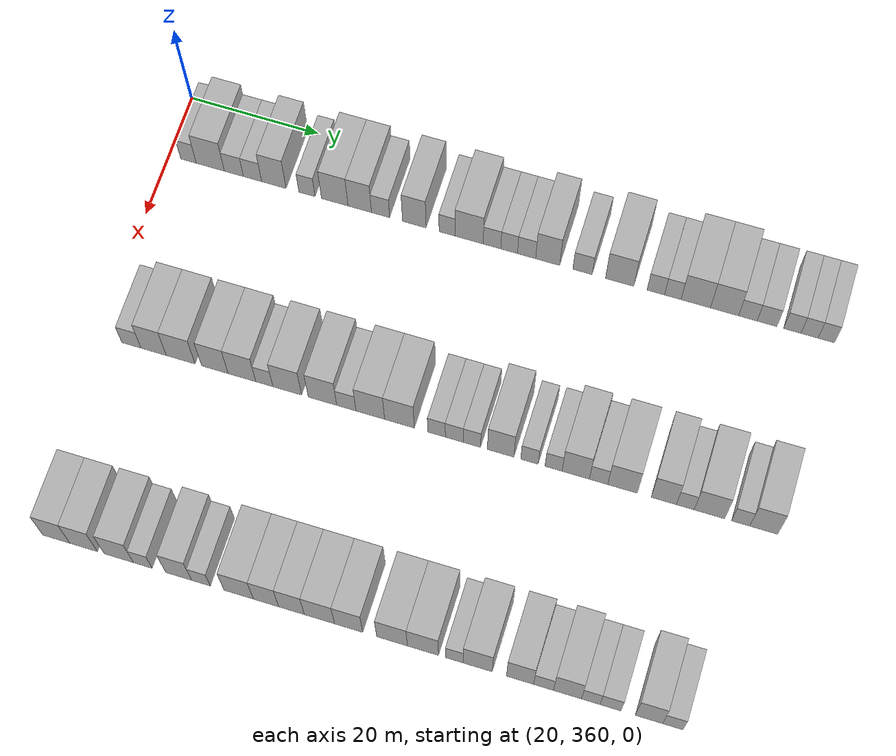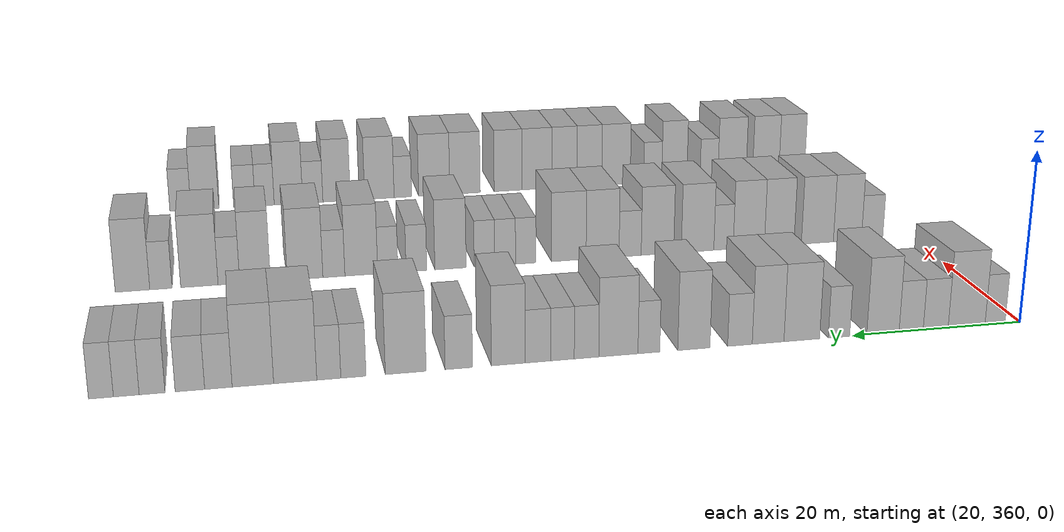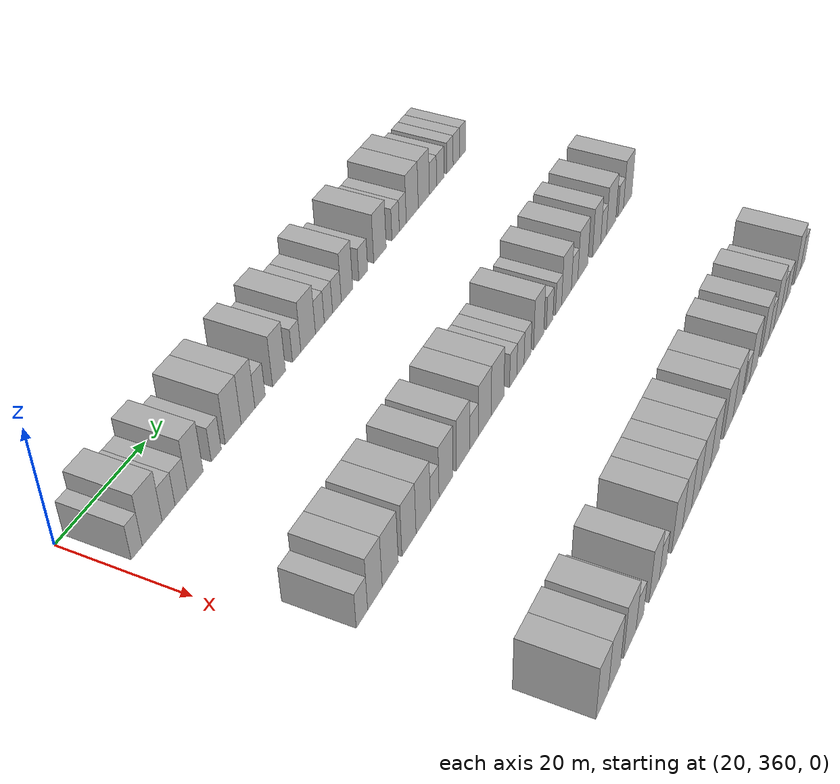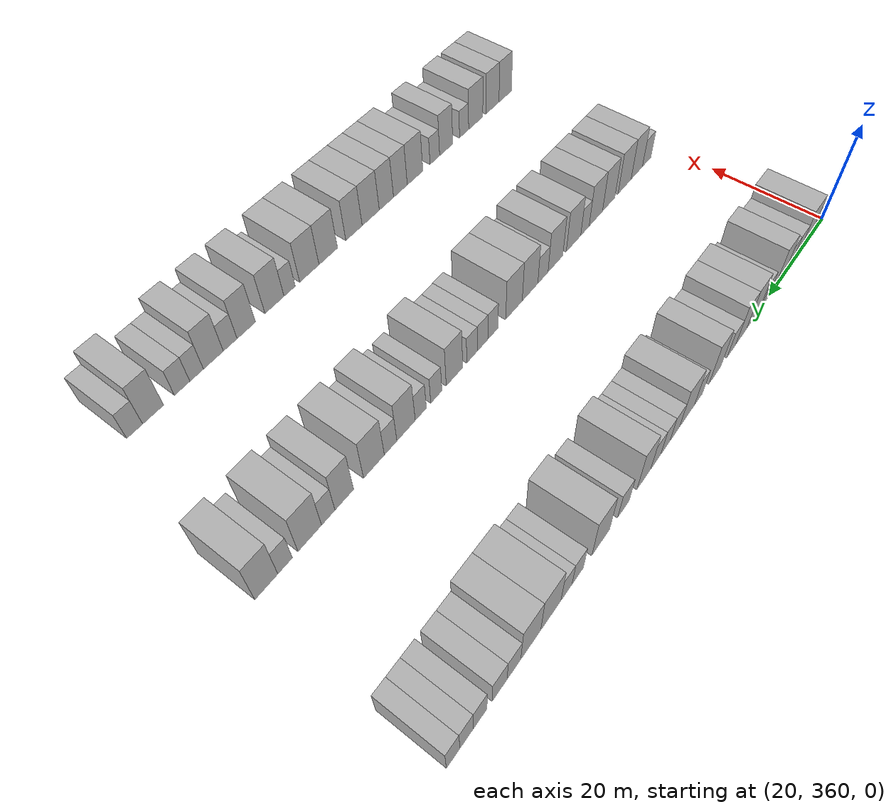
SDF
<sdf version="1.6">
 <world name="default">
  <model name="building_196">
   <static>1</static>
   <pose>25.0000 363.0761 0 0.000000 0.000000 0.000000</pose>
   <link name="link">
    <pose>0 0 3.00 0 0 0</pose>
    <collision name="collision"><geometry><box><size>10.0000 2.4360 6.0000</size></box></geometry></collision>
    <visual name="visual">
     <cast_shadows>0</cast_shadows>
     <geometry><box><size>10.0000 2.4360 6.0000</size></box></geometry>
     <material>
      <script>
       <uri>model://HANNAS_wall/materials/scripts</uri>
       <uri>model://HANNAS_wall/materials/textures</uri>
       <name>vrc/HANNAS_wall</name>
      </script>
     </material>
    </visual>
   </link>
  </model>
  <model name="building_197">
   <static>1</static>
   <pose>25.0000 366.5120 0 0.000000 0.000000 0.000000</pose>
   <link name="link">
    <pose>0 0 4.50 0 0 0</pose>
    <collision name="collision"><geometry><box><size>10.0000 4.4358 9.0000</size></box></geometry></collision>
    <visual name="visual">
     <cast_shadows>0</cast_shadows>
     <geometry><box><size>10.0000 4.4358 9.0000</size></box></geometry>
     <material>
      <script>
       <uri>model://HANNAS_wall/materials/scripts</uri>
       <uri>model://HANNAS_wall/materials/textures</uri>
       <name>vrc/HANNAS_wall</name>
      </script>
     </material>
    </visual>
   </link>
  </model>
  <model name="building_198">
   <static>1</static>
   <pose>25.0000 370.2203 0 0.000000 0.000000 0.000000</pose>
   <link name="link">
    <pose>0 0 3.00 0 0 0</pose>
    <collision name="collision"><geometry><box><size>10.0000 2.9808 6.0000</size></box></geometry></collision>
    <visual name="visual">
     <cast_shadows>0</cast_shadows>
     <geometry><box><size>10.0000 2.9808 6.0000</size></box></geometry>
     <material>
      <script>
       <uri>model://HANNAS_wall/materials/scripts</uri>
       <uri>model://HANNAS_wall/materials/textures</uri>
       <name>vrc/HANNAS_wall</name>
      </script>
     </material>
    </visual>
   </link>
  </model>
  <model name="building_199">
   <static>1</static>
   <pose>25.0000 373.1420 0 0.000000 0.000000 0.000000</pose>
   <link name="link">
    <pose>0 0 3.00 0 0 0</pose>
    <collision name="collision"><geometry><box><size>10.0000 2.8626 6.0000</size></box></geometry></collision>
    <visual name="visual">
     <cast_shadows>0</cast_shadows>
     <geometry><box><size>10.0000 2.8626 6.0000</size></box></geometry>
     <material>
      <script>
       <uri>model://HANNAS_wall/materials/scripts</uri>
       <uri>model://HANNAS_wall/materials/textures</uri>
       <name>vrc/HANNAS_wall</name>
      </script>
     </material>
    </visual>
   </link>
  </model>
  <model name="building_200">
   <static>1</static>
   <pose>25.0000 376.4767 0 0.000000 0.000000 0.000000</pose>
   <link name="link">
    <pose>0 0 4.50 0 0 0</pose>
    <collision name="collision"><geometry><box><size>10.0000 3.8067 9.0000</size></box></geometry></collision>
    <visual name="visual">
     <cast_shadows>0</cast_shadows>
     <geometry><box><size>10.0000 3.8067 9.0000</size></box></geometry>
     <material>
      <script>
       <uri>model://HANNAS_wall/materials/scripts</uri>
       <uri>model://HANNAS_wall/materials/textures</uri>
       <name>vrc/HANNAS_wall</name>
      </script>
     </material>
    </visual>
   </link>
  </model>
  <model name="building_201">
   <static>1</static>
   <pose>25.0000 381.6316 0 0.000000 0.000000 0.000000</pose>
   <link name="link">
    <pose>0 0 3.00 0 0 0</pose>
    <collision name="collision"><geometry><box><size>10.0000 2.5030 6.0000</size></box></geometry></collision>
    <visual name="visual">
     <cast_shadows>0</cast_shadows>
     <geometry><box><size>10.0000 2.5030 6.0000</size></box></geometry>
     <material>
      <script>
       <uri>model://HANNAS_wall/materials/scripts</uri>
       <uri>model://HANNAS_wall/materials/textures</uri>
       <name>vrc/HANNAS_wall</name>
      </script>
     </material>
    </visual>
   </link>
  </model>
  <model name="building_202">
   <static>1</static>
   <pose>25.0000 385.9404 0 0.000000 0.000000 0.000000</pose>
   <link name="link">
    <pose>0 0 4.50 0 0 0</pose>
    <collision name="collision"><geometry><box><size>10.0000 4.1147 9.0000</size></box></geometry></collision>
    <visual name="visual">
     <cast_shadows>0</cast_shadows>
     <geometry><box><size>10.0000 4.1147 9.0000</size></box></geometry>
     <material>
      <script>
       <uri>model://HANNAS_wall/materials/scripts</uri>
       <uri>model://HANNAS_wall/materials/textures</uri>
       <name>vrc/HANNAS_wall</name>
      </script>
     </material>
    </visual>
   </link>
  </model>
  <model name="building_203">
   <static>1</static>
   <pose>25.0000 389.8136 0 0.000000 0.000000 0.000000</pose>
   <link name="link">
    <pose>0 0 4.50 0 0 0</pose>
    <collision name="collision"><geometry><box><size>10.0000 3.6316 9.0000</size></box></geometry></collision>
    <visual name="visual">
     <cast_shadows>0</cast_shadows>
     <geometry><box><size>10.0000 3.6316 9.0000</size></box></geometry>
     <material>
      <script>
       <uri>model://HANNAS_wall/materials/scripts</uri>
       <uri>model://HANNAS_wall/materials/textures</uri>
       <name>vrc/HANNAS_wall</name>
      </script>
     </material>
    </visual>
   </link>
  </model>
  <model name="building_204">
   <static>1</static>
   <pose>25.0000 393.0250 0 0.000000 0.000000 0.000000</pose>
   <link name="link">
    <pose>0 0 3.00 0 0 0</pose>
    <collision name="collision"><geometry><box><size>10.0000 2.7913 6.0000</size></box></geometry></collision>
    <visual name="visual">
     <cast_shadows>0</cast_shadows>
     <geometry><box><size>10.0000 2.7913 6.0000</size></box></geometry>
     <material>
      <script>
       <uri>model://HANNAS_wall/materials/scripts</uri>
       <uri>model://HANNAS_wall/materials/textures</uri>
       <name>vrc/HANNAS_wall</name>
      </script>
     </material>
    </visual>
   </link>
  </model>
  <model name="building_205">
   <static>1</static>
   <pose>25.0000 398.2296 0 0.000000 0.000000 0.000000</pose>
   <link name="link">
    <pose>0 0 4.50 0 0 0</pose>
    <collision name="collision"><geometry><box><size>10.0000 3.6178 9.0000</size></box></geometry></collision>
    <visual name="visual">
     <cast_shadows>0</cast_shadows>
     <geometry><box><size>10.0000 3.6178 9.0000</size></box></geometry>
     <material>
      <script>
       <uri>model://HANNAS_wall/materials/scripts</uri>
       <uri>model://HANNAS_wall/materials/textures</uri>
       <name>vrc/HANNAS_wall</name>
      </script>
     </material>
    </visual>
   </link>
  </model>
  <model name="building_206">
   <static>1</static>
   <pose>25.0000 403.2517 0 0.000000 0.000000 0.000000</pose>
   <link name="link">
    <pose>0 0 3.00 0 0 0</pose>
    <collision name="collision"><geometry><box><size>10.0000 2.4264 6.0000</size></box></geometry></collision>
    <visual name="visual">
     <cast_shadows>0</cast_shadows>
     <geometry><box><size>10.0000 2.4264 6.0000</size></box></geometry>
     <material>
      <script>
       <uri>model://HANNAS_wall/materials/scripts</uri>
       <uri>model://HANNAS_wall/materials/textures</uri>
       <name>vrc/HANNAS_wall</name>
      </script>
     </material>
    </visual>
   </link>
  </model>
  <model name="building_207">
   <static>1</static>
   <pose>25.0000 406.6248 0 0.000000 0.000000 0.000000</pose>
   <link name="link">
    <pose>0 0 4.50 0 0 0</pose>
    <collision name="collision"><geometry><box><size>10.0000 4.3197 9.0000</size></box></geometry></collision>
    <visual name="visual">
     <cast_shadows>0</cast_shadows>
     <geometry><box><size>10.0000 4.3197 9.0000</size></box></geometry>
     <material>
      <script>
       <uri>model://HANNAS_wall/materials/scripts</uri>
       <uri>model://HANNAS_wall/materials/textures</uri>
       <name>vrc/HANNAS_wall</name>
      </script>
     </material>
    </visual>
   </link>
  </model>
  <model name="building_208">
   <static>1</static>
   <pose>25.0000 410.1252 0 0.000000 0.000000 0.000000</pose>
   <link name="link">
    <pose>0 0 3.00 0 0 0</pose>
    <collision name="collision"><geometry><box><size>10.0000 2.6813 6.0000</size></box></geometry></collision>
    <visual name="visual">
     <cast_shadows>0</cast_shadows>
     <geometry><box><size>10.0000 2.6813 6.0000</size></box></geometry>
     <material>
      <script>
       <uri>model://HANNAS_wall/materials/scripts</uri>
       <uri>model://HANNAS_wall/materials/textures</uri>
       <name>vrc/HANNAS_wall</name>
      </script>
     </material>
    </visual>
   </link>
  </model>
  <model name="building_209">
   <static>1</static>
   <pose>25.0000 412.7390 0 0.000000 0.000000 0.000000</pose>
   <link name="link">
    <pose>0 0 3.00 0 0 0</pose>
    <collision name="collision"><geometry><box><size>10.0000 2.5463 6.0000</size></box></geometry></collision>
    <visual name="visual">
     <cast_shadows>0</cast_shadows>
     <geometry><box><size>10.0000 2.5463 6.0000</size></box></geometry>
     <material>
      <script>
       <uri>model://HANNAS_wall/materials/scripts</uri>
       <uri>model://HANNAS_wall/materials/textures</uri>
       <name>vrc/HANNAS_wall</name>
      </script>
     </material>
    </visual>
   </link>
  </model>
  <model name="building_210">
   <static>1</static>
   <pose>25.0000 415.3882 0 0.000000 0.000000 0.000000</pose>
   <link name="link">
    <pose>0 0 3.00 0 0 0</pose>
    <collision name="collision"><geometry><box><size>10.0000 2.7522 6.0000</size></box></geometry></collision>
    <visual name="visual">
     <cast_shadows>0</cast_shadows>
     <geometry><box><size>10.0000 2.7522 6.0000</size></box></geometry>
     <material>
      <script>
       <uri>model://HANNAS_wall/materials/scripts</uri>
       <uri>model://HANNAS_wall/materials/textures</uri>
       <name>vrc/HANNAS_wall</name>
      </script>
     </material>
    </visual>
   </link>
  </model>
  <model name="building_211">
   <static>1</static>
   <pose>25.0000 418.5839 0 0.000000 0.000000 0.000000</pose>
   <link name="link">
    <pose>0 0 4.50 0 0 0</pose>
    <collision name="collision"><geometry><box><size>10.0000 3.6391 9.0000</size></box></geometry></collision>
    <visual name="visual">
     <cast_shadows>0</cast_shadows>
     <geometry><box><size>10.0000 3.6391 9.0000</size></box></geometry>
     <material>
      <script>
       <uri>model://HANNAS_wall/materials/scripts</uri>
       <uri>model://HANNAS_wall/materials/textures</uri>
       <name>vrc/HANNAS_wall</name>
      </script>
     </material>
    </visual>
   </link>
  </model>
  <model name="building_212">
   <static>1</static>
   <pose>25.0000 423.8590 0 0.000000 0.000000 0.000000</pose>
   <link name="link">
    <pose>0 0 3.00 0 0 0</pose>
    <collision name="collision"><geometry><box><size>10.0000 2.9113 6.0000</size></box></geometry></collision>
    <visual name="visual">
     <cast_shadows>0</cast_shadows>
     <geometry><box><size>10.0000 2.9113 6.0000</size></box></geometry>
     <material>
      <script>
       <uri>model://HANNAS_wall/materials/scripts</uri>
       <uri>model://HANNAS_wall/materials/textures</uri>
       <name>vrc/HANNAS_wall</name>
      </script>
     </material>
    </visual>
   </link>
  </model>
  <model name="building_213">
   <static>1</static>
   <pose>25.0000 429.4489 0 0.000000 0.000000 0.000000</pose>
   <link name="link">
    <pose>0 0 4.50 0 0 0</pose>
    <collision name="collision"><geometry><box><size>10.0000 4.2684 9.0000</size></box></geometry></collision>
    <visual name="visual">
     <cast_shadows>0</cast_shadows>
     <geometry><box><size>10.0000 4.2684 9.0000</size></box></geometry>
     <material>
      <script>
       <uri>model://HANNAS_wall/materials/scripts</uri>
       <uri>model://HANNAS_wall/materials/textures</uri>
       <name>vrc/HANNAS_wall</name>
      </script>
     </material>
    </visual>
   </link>
  </model>
  <model name="building_214">
   <static>1</static>
   <pose>25.0000 434.8872 0 0.000000 0.000000 0.000000</pose>
   <link name="link">
    <pose>0 0 3.00 0 0 0</pose>
    <collision name="collision"><geometry><box><size>10.0000 2.6083 6.0000</size></box></geometry></collision>
    <visual name="visual">
     <cast_shadows>0</cast_shadows>
     <geometry><box><size>10.0000 2.6083 6.0000</size></box></geometry>
     <material>
      <script>
       <uri>model://HANNAS_wall/materials/scripts</uri>
       <uri>model://HANNAS_wall/materials/textures</uri>
       <name>vrc/HANNAS_wall</name>
      </script>
     </material>
    </visual>
   </link>
  </model>
  <model name="building_215">
   <static>1</static>
   <pose>25.0000 437.4243 0 0.000000 0.000000 0.000000</pose>
   <link name="link">
    <pose>0 0 3.00 0 0 0</pose>
    <collision name="collision"><geometry><box><size>10.0000 2.4657 6.0000</size></box></geometry></collision>
    <visual name="visual">
     <cast_shadows>0</cast_shadows>
     <geometry><box><size>10.0000 2.4657 6.0000</size></box></geometry>
     <material>
      <script>
       <uri>model://HANNAS_wall/materials/scripts</uri>
       <uri>model://HANNAS_wall/materials/textures</uri>
       <name>vrc/HANNAS_wall</name>
      </script>
     </material>
    </visual>
   </link>
  </model>
  <model name="building_216">
   <static>1</static>
   <pose>25.0000 440.8545 0 0.000000 0.000000 0.000000</pose>
   <link name="link">
    <pose>0 0 4.50 0 0 0</pose>
    <collision name="collision"><geometry><box><size>10.0000 4.3948 9.0000</size></box></geometry></collision>
    <visual name="visual">
     <cast_shadows>0</cast_shadows>
     <geometry><box><size>10.0000 4.3948 9.0000</size></box></geometry>
     <material>
      <script>
       <uri>model://HANNAS_wall/materials/scripts</uri>
       <uri>model://HANNAS_wall/materials/textures</uri>
       <name>vrc/HANNAS_wall</name>
      </script>
     </material>
    </visual>
   </link>
  </model>
  <model name="building_217">
   <static>1</static>
   <pose>25.0000 445.1422 0 0.000000 0.000000 0.000000</pose>
   <link name="link">
    <pose>0 0 4.50 0 0 0</pose>
    <collision name="collision"><geometry><box><size>10.0000 4.1806 9.0000</size></box></geometry></collision>
    <visual name="visual">
     <cast_shadows>0</cast_shadows>
     <geometry><box><size>10.0000 4.1806 9.0000</size></box></geometry>
     <material>
      <script>
       <uri>model://HANNAS_wall/materials/scripts</uri>
       <uri>model://HANNAS_wall/materials/textures</uri>
       <name>vrc/HANNAS_wall</name>
      </script>
     </material>
    </visual>
   </link>
  </model>
  <model name="building_218">
   <static>1</static>
   <pose>25.0000 448.6079 0 0.000000 0.000000 0.000000</pose>
   <link name="link">
    <pose>0 0 3.00 0 0 0</pose>
    <collision name="collision"><geometry><box><size>10.0000 2.7507 6.0000</size></box></geometry></collision>
    <visual name="visual">
     <cast_shadows>0</cast_shadows>
     <geometry><box><size>10.0000 2.7507 6.0000</size></box></geometry>
     <material>
      <script>
       <uri>model://HANNAS_wall/materials/scripts</uri>
       <uri>model://HANNAS_wall/materials/textures</uri>
       <name>vrc/HANNAS_wall</name>
      </script>
     </material>
    </visual>
   </link>
  </model>
  <model name="building_219">
   <static>1</static>
   <pose>25.0000 451.4491 0 0.000000 0.000000 0.000000</pose>
   <link name="link">
    <pose>0 0 3.00 0 0 0</pose>
    <collision name="collision"><geometry><box><size>10.0000 2.9318 6.0000</size></box></geometry></collision>
    <visual name="visual">
     <cast_shadows>0</cast_shadows>
     <geometry><box><size>10.0000 2.9318 6.0000</size></box></geometry>
     <material>
      <script>
       <uri>model://HANNAS_wall/materials/scripts</uri>
       <uri>model://HANNAS_wall/materials/textures</uri>
       <name>vrc/HANNAS_wall</name>
      </script>
     </material>
    </visual>
   </link>
  </model>
  <model name="building_220">
   <static>1</static>
   <pose>25.0000 455.1872 0 0.000000 0.000000 0.000000</pose>
   <link name="link">
    <pose>0 0 3.00 0 0 0</pose>
    <collision name="collision"><geometry><box><size>10.0000 2.5444 6.0000</size></box></geometry></collision>
    <visual name="visual">
     <cast_shadows>0</cast_shadows>
     <geometry><box><size>10.0000 2.5444 6.0000</size></box></geometry>
     <material>
      <script>
       <uri>model://HANNAS_wall/materials/scripts</uri>
       <uri>model://HANNAS_wall/materials/textures</uri>
       <name>vrc/HANNAS_wall</name>
      </script>
     </material>
    </visual>
   </link>
  </model>
  <model name="building_221">
   <static>1</static>
   <pose>25.0000 457.7211 0 0.000000 0.000000 0.000000</pose>
   <link name="link">
    <pose>0 0 3.00 0 0 0</pose>
    <collision name="collision"><geometry><box><size>10.0000 2.5233 6.0000</size></box></geometry></collision>
    <visual name="visual">
     <cast_shadows>0</cast_shadows>
     <geometry><box><size>10.0000 2.5233 6.0000</size></box></geometry>
     <material>
      <script>
       <uri>model://HANNAS_wall/materials/scripts</uri>
       <uri>model://HANNAS_wall/materials/textures</uri>
       <name>vrc/HANNAS_wall</name>
      </script>
     </material>
    </visual>
   </link>
  </model>
  <model name="building_222">
   <static>1</static>
   <pose>25.0000 460.1951 0 0.000000 0.000000 0.000000</pose>
   <link name="link">
    <pose>0 0 3.00 0 0 0</pose>
    <collision name="collision"><geometry><box><size>10.0000 2.4246 6.0000</size></box></geometry></collision>
    <visual name="visual">
     <cast_shadows>0</cast_shadows>
     <geometry><box><size>10.0000 2.4246 6.0000</size></box></geometry>
     <material>
      <script>
       <uri>model://HANNAS_wall/materials/scripts</uri>
       <uri>model://HANNAS_wall/materials/textures</uri>
       <name>vrc/HANNAS_wall</name>
      </script>
     </material>
    </visual>
   </link>
  </model>
  <model name="building_420">
   <static>1</static>
   <pose>55.0000 365.2046 0 0.000000 0.000000 0.000000</pose>
   <link name="link">
    <pose>0 0 3.00 0 0 0</pose>
    <collision name="collision"><geometry><box><size>10.0000 2.9346 6.0000</size></box></geometry></collision>
    <visual name="visual">
     <cast_shadows>0</cast_shadows>
     <geometry><box><size>10.0000 2.9346 6.0000</size></box></geometry>
     <material>
      <script>
       <uri>model://HANNAS_wall/materials/scripts</uri>
       <uri>model://HANNAS_wall/materials/textures</uri>
       <name>vrc/HANNAS_wall</name>
      </script>
     </material>
    </visual>
   </link>
  </model>
  <model name="building_421">
   <static>1</static>
   <pose>55.0000 368.5958 0 0.000000 0.000000 0.000000</pose>
   <link name="link">
    <pose>0 0 4.50 0 0 0</pose>
    <collision name="collision"><geometry><box><size>10.0000 3.8480 9.0000</size></box></geometry></collision>
    <visual name="visual">
     <cast_shadows>0</cast_shadows>
     <geometry><box><size>10.0000 3.8480 9.0000</size></box></geometry>
     <material>
      <script>
       <uri>model://HANNAS_wall/materials/scripts</uri>
       <uri>model://HANNAS_wall/materials/textures</uri>
       <name>vrc/HANNAS_wall</name>
      </script>
     </material>
    </visual>
   </link>
  </model>
  <model name="building_422">
   <static>1</static>
   <pose>55.0000 372.6988 0 0.000000 0.000000 0.000000</pose>
   <link name="link">
    <pose>0 0 4.50 0 0 0</pose>
    <collision name="collision"><geometry><box><size>10.0000 4.3580 9.0000</size></box></geometry></collision>
    <visual name="visual">
     <cast_shadows>0</cast_shadows>
     <geometry><box><size>10.0000 4.3580 9.0000</size></box></geometry>
     <material>
      <script>
       <uri>model://HANNAS_wall/materials/scripts</uri>
       <uri>model://HANNAS_wall/materials/textures</uri>
       <name>vrc/HANNAS_wall</name>
      </script>
     </material>
    </visual>
   </link>
  </model>
  <model name="building_423">
   <static>1</static>
   <pose>55.0000 377.8747 0 0.000000 0.000000 0.000000</pose>
   <link name="link">
    <pose>0 0 4.50 0 0 0</pose>
    <collision name="collision"><geometry><box><size>10.0000 3.9937 9.0000</size></box></geometry></collision>
    <visual name="visual">
     <cast_shadows>0</cast_shadows>
     <geometry><box><size>10.0000 3.9937 9.0000</size></box></geometry>
     <material>
      <script>
       <uri>model://HANNAS_wall/materials/scripts</uri>
       <uri>model://HANNAS_wall/materials/textures</uri>
       <name>vrc/HANNAS_wall</name>
      </script>
     </material>
    </visual>
   </link>
  </model>
  <model name="building_424">
   <static>1</static>
   <pose>55.0000 381.9598 0 0.000000 0.000000 0.000000</pose>
   <link name="link">
    <pose>0 0 4.50 0 0 0</pose>
    <collision name="collision"><geometry><box><size>10.0000 4.1765 9.0000</size></box></geometry></collision>
    <visual name="visual">
     <cast_shadows>0</cast_shadows>
     <geometry><box><size>10.0000 4.1765 9.0000</size></box></geometry>
     <material>
      <script>
       <uri>model://HANNAS_wall/materials/scripts</uri>
       <uri>model://HANNAS_wall/materials/textures</uri>
       <name>vrc/HANNAS_wall</name>
      </script>
     </material>
    </visual>
   </link>
  </model>
  <model name="building_425">
   <static>1</static>
   <pose>55.0000 385.3337 0 0.000000 0.000000 0.000000</pose>
   <link name="link">
    <pose>0 0 3.00 0 0 0</pose>
    <collision name="collision"><geometry><box><size>10.0000 2.5712 6.0000</size></box></geometry></collision>
    <visual name="visual">
     <cast_shadows>0</cast_shadows>
     <geometry><box><size>10.0000 2.5712 6.0000</size></box></geometry>
     <material>
      <script>
       <uri>model://HANNAS_wall/materials/scripts</uri>
       <uri>model://HANNAS_wall/materials/textures</uri>
       <name>vrc/HANNAS_wall</name>
      </script>
     </material>
    </visual>
   </link>
  </model>
  <model name="building_426">
   <static>1</static>
   <pose>55.0000 388.7705 0 0.000000 0.000000 0.000000</pose>
   <link name="link">
    <pose>0 0 4.50 0 0 0</pose>
    <collision name="collision"><geometry><box><size>10.0000 4.3025 9.0000</size></box></geometry></collision>
    <visual name="visual">
     <cast_shadows>0</cast_shadows>
     <geometry><box><size>10.0000 4.3025 9.0000</size></box></geometry>
     <material>
      <script>
       <uri>model://HANNAS_wall/materials/scripts</uri>
       <uri>model://HANNAS_wall/materials/textures</uri>
       <name>vrc/HANNAS_wall</name>
      </script>
     </material>
    </visual>
   </link>
  </model>
  <model name="building_427">
   <static>1</static>
   <pose>55.0000 394.0456 0 0.000000 0.000000 0.000000</pose>
   <link name="link">
    <pose>0 0 4.50 0 0 0</pose>
    <collision name="collision"><geometry><box><size>10.0000 4.2476 9.0000</size></box></geometry></collision>
    <visual name="visual">
     <cast_shadows>0</cast_shadows>
     <geometry><box><size>10.0000 4.2476 9.0000</size></box></geometry>
     <material>
      <script>
       <uri>model://HANNAS_wall/materials/scripts</uri>
       <uri>model://HANNAS_wall/materials/textures</uri>
       <name>vrc/HANNAS_wall</name>
      </script>
     </material>
    </visual>
   </link>
  </model>
  <model name="building_428">
   <static>1</static>
   <pose>55.0000 397.6060 0 0.000000 0.000000 0.000000</pose>
   <link name="link">
    <pose>0 0 3.00 0 0 0</pose>
    <collision name="collision"><geometry><box><size>10.0000 2.8733 6.0000</size></box></geometry></collision>
    <visual name="visual">
     <cast_shadows>0</cast_shadows>
     <geometry><box><size>10.0000 2.8733 6.0000</size></box></geometry>
     <material>
      <script>
       <uri>model://HANNAS_wall/materials/scripts</uri>
       <uri>model://HANNAS_wall/materials/textures</uri>
       <name>vrc/HANNAS_wall</name>
      </script>
     </material>
    </visual>
   </link>
  </model>
  <model name="building_429">
   <static>1</static>
   <pose>55.0000 401.1682 0 0.000000 0.000000 0.000000</pose>
   <link name="link">
    <pose>0 0 4.50 0 0 0</pose>
    <collision name="collision"><geometry><box><size>10.0000 4.2511 9.0000</size></box></geometry></collision>
    <visual name="visual">
     <cast_shadows>0</cast_shadows>
     <geometry><box><size>10.0000 4.2511 9.0000</size></box></geometry>
     <material>
      <script>
       <uri>model://HANNAS_wall/materials/scripts</uri>
       <uri>model://HANNAS_wall/materials/textures</uri>
       <name>vrc/HANNAS_wall</name>
      </script>
     </material>
    </visual>
   </link>
  </model>
  <model name="building_430">
   <static>1</static>
   <pose>55.0000 405.4967 0 0.000000 0.000000 0.000000</pose>
   <link name="link">
    <pose>0 0 4.50 0 0 0</pose>
    <collision name="collision"><geometry><box><size>10.0000 4.4058 9.0000</size></box></geometry></collision>
    <visual name="visual">
     <cast_shadows>0</cast_shadows>
     <geometry><box><size>10.0000 4.4058 9.0000</size></box></geometry>
     <material>
      <script>
       <uri>model://HANNAS_wall/materials/scripts</uri>
       <uri>model://HANNAS_wall/materials/textures</uri>
       <name>vrc/HANNAS_wall</name>
      </script>
     </material>
    </visual>
   </link>
  </model>
  <model name="building_431">
   <static>1</static>
   <pose>55.0000 410.9851 0 0.000000 0.000000 0.000000</pose>
   <link name="link">
    <pose>0 0 3.00 0 0 0</pose>
    <collision name="collision"><geometry><box><size>10.0000 2.5710 6.0000</size></box></geometry></collision>
    <visual name="visual">
     <cast_shadows>0</cast_shadows>
     <geometry><box><size>10.0000 2.5710 6.0000</size></box></geometry>
     <material>
      <script>
       <uri>model://HANNAS_wall/materials/scripts</uri>
       <uri>model://HANNAS_wall/materials/textures</uri>
       <name>vrc/HANNAS_wall</name>
      </script>
     </material>
    </visual>
   </link>
  </model>
  <model name="building_432">
   <static>1</static>
   <pose>55.0000 413.5865 0 0.000000 0.000000 0.000000</pose>
   <link name="link">
    <pose>0 0 3.00 0 0 0</pose>
    <collision name="collision"><geometry><box><size>10.0000 2.6320 6.0000</size></box></geometry></collision>
    <visual name="visual">
     <cast_shadows>0</cast_shadows>
     <geometry><box><size>10.0000 2.6320 6.0000</size></box></geometry>
     <material>
      <script>
       <uri>model://HANNAS_wall/materials/scripts</uri>
       <uri>model://HANNAS_wall/materials/textures</uri>
       <name>vrc/HANNAS_wall</name>
      </script>
     </material>
    </visual>
   </link>
  </model>
  <model name="building_433">
   <static>1</static>
   <pose>55.0000 416.1823 0 0.000000 0.000000 0.000000</pose>
   <link name="link">
    <pose>0 0 3.00 0 0 0</pose>
    <collision name="collision"><geometry><box><size>10.0000 2.5596 6.0000</size></box></geometry></collision>
    <visual name="visual">
     <cast_shadows>0</cast_shadows>
     <geometry><box><size>10.0000 2.5596 6.0000</size></box></geometry>
     <material>
      <script>
       <uri>model://HANNAS_wall/materials/scripts</uri>
       <uri>model://HANNAS_wall/materials/textures</uri>
       <name>vrc/HANNAS_wall</name>
      </script>
     </material>
    </visual>
   </link>
  </model>
  <model name="building_434">
   <static>1</static>
   <pose>55.0000 420.4083 0 0.000000 0.000000 0.000000</pose>
   <link name="link">
    <pose>0 0 4.50 0 0 0</pose>
    <collision name="collision"><geometry><box><size>10.0000 3.8924 9.0000</size></box></geometry></collision>
    <visual name="visual">
     <cast_shadows>0</cast_shadows>
     <geometry><box><size>10.0000 3.8924 9.0000</size></box></geometry>
     <material>
      <script>
       <uri>model://HANNAS_wall/materials/scripts</uri>
       <uri>model://HANNAS_wall/materials/textures</uri>
       <name>vrc/HANNAS_wall</name>
      </script>
     </material>
    </visual>
   </link>
  </model>
  <model name="building_435">
   <static>1</static>
   <pose>55.0000 424.6277 0 0.000000 0.000000 0.000000</pose>
   <link name="link">
    <pose>0 0 3.00 0 0 0</pose>
    <collision name="collision"><geometry><box><size>10.0000 2.5464 6.0000</size></box></geometry></collision>
    <visual name="visual">
     <cast_shadows>0</cast_shadows>
     <geometry><box><size>10.0000 2.5464 6.0000</size></box></geometry>
     <material>
      <script>
       <uri>model://HANNAS_wall/materials/scripts</uri>
       <uri>model://HANNAS_wall/materials/textures</uri>
       <name>vrc/HANNAS_wall</name>
      </script>
     </material>
    </visual>
   </link>
  </model>
  <model name="building_436">
   <static>1</static>
   <pose>55.0000 428.1360 0 0.000000 0.000000 0.000000</pose>
   <link name="link">
    <pose>0 0 3.00 0 0 0</pose>
    <collision name="collision"><geometry><box><size>10.0000 2.4703 6.0000</size></box></geometry></collision>
    <visual name="visual">
     <cast_shadows>0</cast_shadows>
     <geometry><box><size>10.0000 2.4703 6.0000</size></box></geometry>
     <material>
      <script>
       <uri>model://HANNAS_wall/materials/scripts</uri>
       <uri>model://HANNAS_wall/materials/textures</uri>
       <name>vrc/HANNAS_wall</name>
      </script>
     </material>
    </visual>
   </link>
  </model>
  <model name="building_437">
   <static>1</static>
   <pose>55.0000 431.3674 0 0.000000 0.000000 0.000000</pose>
   <link name="link">
    <pose>0 0 4.50 0 0 0</pose>
    <collision name="collision"><geometry><box><size>10.0000 3.9924 9.0000</size></box></geometry></collision>
    <visual name="visual">
     <cast_shadows>0</cast_shadows>
     <geometry><box><size>10.0000 3.9924 9.0000</size></box></geometry>
     <material>
      <script>
       <uri>model://HANNAS_wall/materials/scripts</uri>
       <uri>model://HANNAS_wall/materials/textures</uri>
       <name>vrc/HANNAS_wall</name>
      </script>
     </material>
    </visual>
   </link>
  </model>
  <model name="building_438">
   <static>1</static>
   <pose>55.0000 434.6939 0 0.000000 0.000000 0.000000</pose>
   <link name="link">
    <pose>0 0 3.00 0 0 0</pose>
    <collision name="collision"><geometry><box><size>10.0000 2.6608 6.0000</size></box></geometry></collision>
    <visual name="visual">
     <cast_shadows>0</cast_shadows>
     <geometry><box><size>10.0000 2.6608 6.0000</size></box></geometry>
     <material>
      <script>
       <uri>model://HANNAS_wall/materials/scripts</uri>
       <uri>model://HANNAS_wall/materials/textures</uri>
       <name>vrc/HANNAS_wall</name>
      </script>
     </material>
    </visual>
   </link>
  </model>
  <model name="building_439">
   <static>1</static>
   <pose>55.0000 438.1622 0 0.000000 0.000000 0.000000</pose>
   <link name="link">
    <pose>0 0 4.50 0 0 0</pose>
    <collision name="collision"><geometry><box><size>10.0000 4.2758 9.0000</size></box></geometry></collision>
    <visual name="visual">
     <cast_shadows>0</cast_shadows>
     <geometry><box><size>10.0000 4.2758 9.0000</size></box></geometry>
     <material>
      <script>
       <uri>model://HANNAS_wall/materials/scripts</uri>
       <uri>model://HANNAS_wall/materials/textures</uri>
       <name>vrc/HANNAS_wall</name>
      </script>
     </material>
    </visual>
   </link>
  </model>
  <model name="building_440">
   <static>1</static>
   <pose>55.0000 444.1187 0 0.000000 0.000000 0.000000</pose>
   <link name="link">
    <pose>0 0 4.50 0 0 0</pose>
    <collision name="collision"><geometry><box><size>10.0000 3.6371 9.0000</size></box></geometry></collision>
    <visual name="visual">
     <cast_shadows>0</cast_shadows>
     <geometry><box><size>10.0000 3.6371 9.0000</size></box></geometry>
     <material>
      <script>
       <uri>model://HANNAS_wall/materials/scripts</uri>
       <uri>model://HANNAS_wall/materials/textures</uri>
       <name>vrc/HANNAS_wall</name>
      </script>
     </material>
    </visual>
   </link>
  </model>
  <model name="building_441">
   <static>1</static>
   <pose>55.0000 447.2151 0 0.000000 0.000000 0.000000</pose>
   <link name="link">
    <pose>0 0 3.00 0 0 0</pose>
    <collision name="collision"><geometry><box><size>10.0000 2.5557 6.0000</size></box></geometry></collision>
    <visual name="visual">
     <cast_shadows>0</cast_shadows>
     <geometry><box><size>10.0000 2.5557 6.0000</size></box></geometry>
     <material>
      <script>
       <uri>model://HANNAS_wall/materials/scripts</uri>
       <uri>model://HANNAS_wall/materials/textures</uri>
       <name>vrc/HANNAS_wall</name>
      </script>
     </material>
    </visual>
   </link>
  </model>
  <model name="building_442">
   <static>1</static>
   <pose>55.0000 450.6782 0 0.000000 0.000000 0.000000</pose>
   <link name="link">
    <pose>0 0 4.50 0 0 0</pose>
    <collision name="collision"><geometry><box><size>10.0000 4.3704 9.0000</size></box></geometry></collision>
    <visual name="visual">
     <cast_shadows>0</cast_shadows>
     <geometry><box><size>10.0000 4.3704 9.0000</size></box></geometry>
     <material>
      <script>
       <uri>model://HANNAS_wall/materials/scripts</uri>
       <uri>model://HANNAS_wall/materials/textures</uri>
       <name>vrc/HANNAS_wall</name>
      </script>
     </material>
    </visual>
   </link>
  </model>
  <model name="building_443">
   <static>1</static>
   <pose>55.0000 455.1565 0 0.000000 0.000000 0.000000</pose>
   <link name="link">
    <pose>0 0 3.00 0 0 0</pose>
    <collision name="collision"><geometry><box><size>10.0000 2.5863 6.0000</size></box></geometry></collision>
    <visual name="visual">
     <cast_shadows>0</cast_shadows>
     <geometry><box><size>10.0000 2.5863 6.0000</size></box></geometry>
     <material>
      <script>
       <uri>model://HANNAS_wall/materials/scripts</uri>
       <uri>model://HANNAS_wall/materials/textures</uri>
       <name>vrc/HANNAS_wall</name>
      </script>
     </material>
    </visual>
   </link>
  </model>
  <model name="building_444">
   <static>1</static>
   <pose>55.0000 458.4418 0 0.000000 0.000000 0.000000</pose>
   <link name="link">
    <pose>0 0 4.50 0 0 0</pose>
    <collision name="collision"><geometry><box><size>10.0000 3.9844 9.0000</size></box></geometry></collision>
    <visual name="visual">
     <cast_shadows>0</cast_shadows>
     <geometry><box><size>10.0000 3.9844 9.0000</size></box></geometry>
     <material>
      <script>
       <uri>model://HANNAS_wall/materials/scripts</uri>
       <uri>model://HANNAS_wall/materials/textures</uri>
       <name>vrc/HANNAS_wall</name>
      </script>
     </material>
    </visual>
   </link>
  </model>
  <model name="building_641">
   <static>1</static>
   <pose>85.0000 365.2812 0 0.000000 0.000000 0.000000</pose>
   <link name="link">
    <pose>0 0 4.50 0 0 0</pose>
    <collision name="collision"><geometry><box><size>10.0000 3.9755 9.0000</size></box></geometry></collision>
    <visual name="visual">
     <cast_shadows>0</cast_shadows>
     <geometry><box><size>10.0000 3.9755 9.0000</size></box></geometry>
     <material>
      <script>
       <uri>model://HANNAS_wall/materials/scripts</uri>
       <uri>model://HANNAS_wall/materials/textures</uri>
       <name>vrc/HANNAS_wall</name>
      </script>
     </material>
    </visual>
   </link>
  </model>
  <model name="building_642">
   <static>1</static>
   <pose>85.0000 369.3018 0 0.000000 0.000000 0.000000</pose>
   <link name="link">
    <pose>0 0 4.50 0 0 0</pose>
    <collision name="collision"><geometry><box><size>10.0000 4.0658 9.0000</size></box></geometry></collision>
    <visual name="visual">
     <cast_shadows>0</cast_shadows>
     <geometry><box><size>10.0000 4.0658 9.0000</size></box></geometry>
     <material>
      <script>
       <uri>model://HANNAS_wall/materials/scripts</uri>
       <uri>model://HANNAS_wall/materials/textures</uri>
       <name>vrc/HANNAS_wall</name>
      </script>
     </material>
    </visual>
   </link>
  </model>
  <model name="building_643">
   <static>1</static>
   <pose>85.0000 374.4855 0 0.000000 0.000000 0.000000</pose>
   <link name="link">
    <pose>0 0 4.50 0 0 0</pose>
    <collision name="collision"><geometry><box><size>10.0000 4.3015 9.0000</size></box></geometry></collision>
    <visual name="visual">
     <cast_shadows>0</cast_shadows>
     <geometry><box><size>10.0000 4.3015 9.0000</size></box></geometry>
     <material>
      <script>
       <uri>model://HANNAS_wall/materials/scripts</uri>
       <uri>model://HANNAS_wall/materials/textures</uri>
       <name>vrc/HANNAS_wall</name>
      </script>
     </material>
    </visual>
   </link>
  </model>
  <model name="building_644">
   <static>1</static>
   <pose>85.0000 377.9977 0 0.000000 0.000000 0.000000</pose>
   <link name="link">
    <pose>0 0 3.00 0 0 0</pose>
    <collision name="collision"><geometry><box><size>10.0000 2.7230 6.0000</size></box></geometry></collision>
    <visual name="visual">
     <cast_shadows>0</cast_shadows>
     <geometry><box><size>10.0000 2.7230 6.0000</size></box></geometry>
     <material>
      <script>
       <uri>model://HANNAS_wall/materials/scripts</uri>
       <uri>model://HANNAS_wall/materials/textures</uri>
       <name>vrc/HANNAS_wall</name>
      </script>
     </material>
    </visual>
   </link>
  </model>
  <model name="building_645">
   <static>1</static>
   <pose>85.0000 383.2494 0 0.000000 0.000000 0.000000</pose>
   <link name="link">
    <pose>0 0 4.50 0 0 0</pose>
    <collision name="collision"><geometry><box><size>10.0000 3.7803 9.0000</size></box></geometry></collision>
    <visual name="visual">
     <cast_shadows>0</cast_shadows>
     <geometry><box><size>10.0000 3.7803 9.0000</size></box></geometry>
     <material>
      <script>
       <uri>model://HANNAS_wall/materials/scripts</uri>
       <uri>model://HANNAS_wall/materials/textures</uri>
       <name>vrc/HANNAS_wall</name>
      </script>
     </material>
    </visual>
   </link>
  </model>
  <model name="building_646">
   <static>1</static>
   <pose>85.0000 386.4970 0 0.000000 0.000000 0.000000</pose>
   <link name="link">
    <pose>0 0 3.00 0 0 0</pose>
    <collision name="collision"><geometry><box><size>10.0000 2.7151 6.0000</size></box></geometry></collision>
    <visual name="visual">
     <cast_shadows>0</cast_shadows>
     <geometry><box><size>10.0000 2.7151 6.0000</size></box></geometry>
     <material>
      <script>
       <uri>model://HANNAS_wall/materials/scripts</uri>
       <uri>model://HANNAS_wall/materials/textures</uri>
       <name>vrc/HANNAS_wall</name>
      </script>
     </material>
    </visual>
   </link>
  </model>
  <model name="building_647">
   <static>1</static>
   <pose>85.0000 391.9772 0 0.000000 0.000000 0.000000</pose>
   <link name="link">
    <pose>0 0 4.50 0 0 0</pose>
    <collision name="collision"><geometry><box><size>10.0000 4.2452 9.0000</size></box></geometry></collision>
    <visual name="visual">
     <cast_shadows>0</cast_shadows>
     <geometry><box><size>10.0000 4.2452 9.0000</size></box></geometry>
     <material>
      <script>
       <uri>model://HANNAS_wall/materials/scripts</uri>
       <uri>model://HANNAS_wall/materials/textures</uri>
       <name>vrc/HANNAS_wall</name>
      </script>
     </material>
    </visual>
   </link>
  </model>
  <model name="building_648">
   <static>1</static>
   <pose>85.0000 395.9267 0 0.000000 0.000000 0.000000</pose>
   <link name="link">
    <pose>0 0 4.50 0 0 0</pose>
    <collision name="collision"><geometry><box><size>10.0000 3.6539 9.0000</size></box></geometry></collision>
    <visual name="visual">
     <cast_shadows>0</cast_shadows>
     <geometry><box><size>10.0000 3.6539 9.0000</size></box></geometry>
     <material>
      <script>
       <uri>model://HANNAS_wall/materials/scripts</uri>
       <uri>model://HANNAS_wall/materials/textures</uri>
       <name>vrc/HANNAS_wall</name>
      </script>
     </material>
    </visual>
   </link>
  </model>
  <model name="building_649">
   <static>1</static>
   <pose>85.0000 399.6013 0 0.000000 0.000000 0.000000</pose>
   <link name="link">
    <pose>0 0 4.50 0 0 0</pose>
    <collision name="collision"><geometry><box><size>10.0000 3.6953 9.0000</size></box></geometry></collision>
    <visual name="visual">
     <cast_shadows>0</cast_shadows>
     <geometry><box><size>10.0000 3.6953 9.0000</size></box></geometry>
     <material>
      <script>
       <uri>model://HANNAS_wall/materials/scripts</uri>
       <uri>model://HANNAS_wall/materials/textures</uri>
       <name>vrc/HANNAS_wall</name>
      </script>
     </material>
    </visual>
   </link>
  </model>
  <model name="building_650">
   <static>1</static>
   <pose>85.0000 403.6218 0 0.000000 0.000000 0.000000</pose>
   <link name="link">
    <pose>0 0 4.50 0 0 0</pose>
    <collision name="collision"><geometry><box><size>10.0000 4.3458 9.0000</size></box></geometry></collision>
    <visual name="visual">
     <cast_shadows>0</cast_shadows>
     <geometry><box><size>10.0000 4.3458 9.0000</size></box></geometry>
     <material>
      <script>
       <uri>model://HANNAS_wall/materials/scripts</uri>
       <uri>model://HANNAS_wall/materials/textures</uri>
       <name>vrc/HANNAS_wall</name>
      </script>
     </material>
    </visual>
   </link>
  </model>
  <model name="building_651">
   <static>1</static>
   <pose>85.0000 407.8093 0 0.000000 0.000000 0.000000</pose>
   <link name="link">
    <pose>0 0 4.50 0 0 0</pose>
    <collision name="collision"><geometry><box><size>10.0000 4.0291 9.0000</size></box></geometry></collision>
    <visual name="visual">
     <cast_shadows>0</cast_shadows>
     <geometry><box><size>10.0000 4.0291 9.0000</size></box></geometry>
     <material>
      <script>
       <uri>model://HANNAS_wall/materials/scripts</uri>
       <uri>model://HANNAS_wall/materials/textures</uri>
       <name>vrc/HANNAS_wall</name>
      </script>
     </material>
    </visual>
   </link>
  </model>
  <model name="building_652">
   <static>1</static>
   <pose>85.0000 414.0041 0 0.000000 0.000000 0.000000</pose>
   <link name="link">
    <pose>0 0 4.50 0 0 0</pose>
    <collision name="collision"><geometry><box><size>10.0000 4.3606 9.0000</size></box></geometry></collision>
    <visual name="visual">
     <cast_shadows>0</cast_shadows>
     <geometry><box><size>10.0000 4.3606 9.0000</size></box></geometry>
     <material>
      <script>
       <uri>model://HANNAS_wall/materials/scripts</uri>
       <uri>model://HANNAS_wall/materials/textures</uri>
       <name>vrc/HANNAS_wall</name>
      </script>
     </material>
    </visual>
   </link>
  </model>
  <model name="building_653">
   <static>1</static>
   <pose>85.0000 418.3920 0 0.000000 0.000000 0.000000</pose>
   <link name="link">
    <pose>0 0 4.50 0 0 0</pose>
    <collision name="collision"><geometry><box><size>10.0000 4.4151 9.0000</size></box></geometry></collision>
    <visual name="visual">
     <cast_shadows>0</cast_shadows>
     <geometry><box><size>10.0000 4.4151 9.0000</size></box></geometry>
     <material>
      <script>
       <uri>model://HANNAS_wall/materials/scripts</uri>
       <uri>model://HANNAS_wall/materials/textures</uri>
       <name>vrc/HANNAS_wall</name>
      </script>
     </material>
    </visual>
   </link>
  </model>
  <model name="building_654">
   <static>1</static>
   <pose>85.0000 422.8379 0 0.000000 0.000000 0.000000</pose>
   <link name="link">
    <pose>0 0 3.00 0 0 0</pose>
    <collision name="collision"><geometry><box><size>10.0000 2.4766 6.0000</size></box></geometry></collision>
    <visual name="visual">
     <cast_shadows>0</cast_shadows>
     <geometry><box><size>10.0000 2.4766 6.0000</size></box></geometry>
     <material>
      <script>
       <uri>model://HANNAS_wall/materials/scripts</uri>
       <uri>model://HANNAS_wall/materials/textures</uri>
       <name>vrc/HANNAS_wall</name>
      </script>
     </material>
    </visual>
   </link>
  </model>
  <model name="building_655">
   <static>1</static>
   <pose>85.0000 426.1374 0 0.000000 0.000000 0.000000</pose>
   <link name="link">
    <pose>0 0 4.50 0 0 0</pose>
    <collision name="collision"><geometry><box><size>10.0000 4.1223 9.0000</size></box></geometry></collision>
    <visual name="visual">
     <cast_shadows>0</cast_shadows>
     <geometry><box><size>10.0000 4.1223 9.0000</size></box></geometry>
     <material>
      <script>
       <uri>model://HANNAS_wall/materials/scripts</uri>
       <uri>model://HANNAS_wall/materials/textures</uri>
       <name>vrc/HANNAS_wall</name>
      </script>
     </material>
    </visual>
   </link>
  </model>
  <model name="building_656">
   <static>1</static>
   <pose>85.0000 432.1055 0 0.000000 0.000000 0.000000</pose>
   <link name="link">
    <pose>0 0 4.50 0 0 0</pose>
    <collision name="collision"><geometry><box><size>10.0000 3.8141 9.0000</size></box></geometry></collision>
    <visual name="visual">
     <cast_shadows>0</cast_shadows>
     <geometry><box><size>10.0000 3.8141 9.0000</size></box></geometry>
     <material>
      <script>
       <uri>model://HANNAS_wall/materials/scripts</uri>
       <uri>model://HANNAS_wall/materials/textures</uri>
       <name>vrc/HANNAS_wall</name>
      </script>
     </material>
    </visual>
   </link>
  </model>
  <model name="building_657">
   <static>1</static>
   <pose>85.0000 435.4060 0 0.000000 0.000000 0.000000</pose>
   <link name="link">
    <pose>0 0 3.00 0 0 0</pose>
    <collision name="collision"><geometry><box><size>10.0000 2.7868 6.0000</size></box></geometry></collision>
    <visual name="visual">
     <cast_shadows>0</cast_shadows>
     <geometry><box><size>10.0000 2.7868 6.0000</size></box></geometry>
     <material>
      <script>
       <uri>model://HANNAS_wall/materials/scripts</uri>
       <uri>model://HANNAS_wall/materials/textures</uri>
       <name>vrc/HANNAS_wall</name>
      </script>
     </material>
    </visual>
   </link>
  </model>
  <model name="building_658">
   <static>1</static>
   <pose>85.0000 438.7568 0 0.000000 0.000000 0.000000</pose>
   <link name="link">
    <pose>0 0 4.50 0 0 0</pose>
    <collision name="collision"><geometry><box><size>10.0000 3.9148 9.0000</size></box></geometry></collision>
    <visual name="visual">
     <cast_shadows>0</cast_shadows>
     <geometry><box><size>10.0000 3.9148 9.0000</size></box></geometry>
     <material>
      <script>
       <uri>model://HANNAS_wall/materials/scripts</uri>
       <uri>model://HANNAS_wall/materials/textures</uri>
       <name>vrc/HANNAS_wall</name>
      </script>
     </material>
    </visual>
   </link>
  </model>
  <model name="building_659">
   <static>1</static>
   <pose>85.0000 442.0169 0 0.000000 0.000000 0.000000</pose>
   <link name="link">
    <pose>0 0 3.00 0 0 0</pose>
    <collision name="collision"><geometry><box><size>10.0000 2.6054 6.0000</size></box></geometry></collision>
    <visual name="visual">
     <cast_shadows>0</cast_shadows>
     <geometry><box><size>10.0000 2.6054 6.0000</size></box></geometry>
     <material>
      <script>
       <uri>model://HANNAS_wall/materials/scripts</uri>
       <uri>model://HANNAS_wall/materials/textures</uri>
       <name>vrc/HANNAS_wall</name>
      </script>
     </material>
    </visual>
   </link>
  </model>
  <model name="building_660">
   <static>1</static>
   <pose>85.0000 444.7707 0 0.000000 0.000000 0.000000</pose>
   <link name="link">
    <pose>0 0 3.00 0 0 0</pose>
    <collision name="collision"><geometry><box><size>10.0000 2.9023 6.0000</size></box></geometry></collision>
    <visual name="visual">
     <cast_shadows>0</cast_shadows>
     <geometry><box><size>10.0000 2.9023 6.0000</size></box></geometry>
     <material>
      <script>
       <uri>model://HANNAS_wall/materials/scripts</uri>
       <uri>model://HANNAS_wall/materials/textures</uri>
       <name>vrc/HANNAS_wall</name>
      </script>
     </material>
    </visual>
   </link>
  </model>
  <model name="building_661">
   <static>1</static>
   <pose>85.0000 450.1096 0 0.000000 0.000000 0.000000</pose>
   <link name="link">
    <pose>0 0 4.50 0 0 0</pose>
    <collision name="collision"><geometry><box><size>10.0000 3.7754 9.0000</size></box></geometry></collision>
    <visual name="visual">
     <cast_shadows>0</cast_shadows>
     <geometry><box><size>10.0000 3.7754 9.0000</size></box></geometry>
     <material>
      <script>
       <uri>model://HANNAS_wall/materials/scripts</uri>
       <uri>model://HANNAS_wall/materials/textures</uri>
       <name>vrc/HANNAS_wall</name>
      </script>
     </material>
    </visual>
   </link>
  </model>
  <model name="building_662">
   <static>1</static>
   <pose>85.0000 453.4027 0 0.000000 0.000000 0.000000</pose>
   <link name="link">
    <pose>0 0 3.00 0 0 0</pose>
    <collision name="collision"><geometry><box><size>10.0000 2.8108 6.0000</size></box></geometry></collision>
    <visual name="visual">
     <cast_shadows>0</cast_shadows>
     <geometry><box><size>10.0000 2.8108 6.0000</size></box></geometry>
     <material>
      <script>
       <uri>model://HANNAS_wall/materials/scripts</uri>
       <uri>model://HANNAS_wall/materials/textures</uri>
       <name>vrc/HANNAS_wall</name>
      </script>
     </material>
    </visual>
   </link>
  </model>
 </world>
</sdf>
